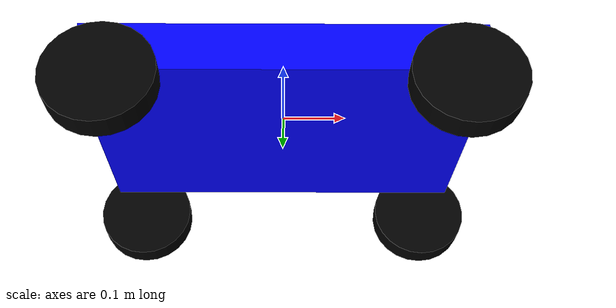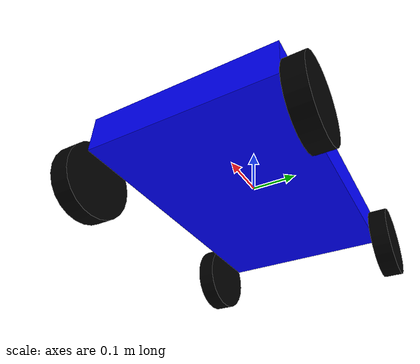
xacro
<?xml version="1.0"?>
<robot name="rover" xmlns:xacro="http://www.ros.org/wiki/xacro">

  <!-- ======================= Materials ======================= -->
  <material name="black"><color rgba="0 0 0 1"/></material>
  <material name="blue"><color rgba="0 0 1 1"/></material>
  <material name="red"><color rgba="1 0 0 1"/></material>
  <material name="yellow"><color rgba="1 1 0 1"/></material>
  <material name="green"><color rgba="0 1 0 1"/></material>

  <!-- ======================= Chassis ======================= -->
  <link name="chassis">
    <visual>
      <geometry><box size="0.6 0.4 0.08"/></geometry>
      <material name="blue"/>
    </visual>
    <collision>
      <geometry><box size="0.6 0.4 0.1"/></geometry>
    </collision>
    <inertial>
      <mass value="10"/>
      <inertia ixx="0.5" ixy="0" ixz="0" iyy="0.5" iyz="0" izz="0.5"/>
    </inertial>
  </link>
  <gazebo reference="chassis"><material>Gazebo/Blue</material></gazebo>

  <!-- ======================= Wheel Macro ======================= -->
  <xacro:macro name="wheel" params="name x y driven">
    <link name="${name}">
      <visual>
        <geometry><cylinder radius="0.08" length="0.04"/></geometry>
        <origin xyz="0 0 0" rpy="1.5708 0 0"/>
        <material name="black"/>
      </visual>
      <collision>
        <geometry><cylinder radius="0.08" length="0.04"/></geometry>
        <origin xyz="0 0 0" rpy="1.5708 0 0"/>
        <surface><friction><ode mu="0.1" mu2="0.1"/></friction></surface>
      </collision>
      <inertial>
        <mass value="1"/>
        <inertia ixx="0.001" ixy="0" ixz="0" iyy="0.001" iyz="0" izz="0.001"/>
      </inertial>
    </link>

    <joint name="${name}_joint" type="continuous">
      <parent link="chassis"/>
      <child link="${name}"/>
      <origin xyz="${x} ${y} -0.075" rpy="0 0 0"/>
      <axis xyz="0 1 0"/>
      <dynamics damping="0.1" friction="0.0"/>
    </joint>

    <gazebo reference="${name}">
      <material>Gazebo/Black</material>
      <mu1>0.4</mu1>
      <mu2>0.4</mu2>
      <kp>100000.0</kp>
      <kd>1.0</kd>
      <fdir1>1 0 0</fdir1>
      <maxVel>3</maxVel>
      <minDepth>0.001</minDepth>
    </gazebo>
  </xacro:macro>

  <!-- ======================= Wheels Placement ======================= -->
  <xacro:wheel name="front_left_wheel"  x="0.25"  y="0.23" driven="false"/>
  <xacro:wheel name="front_right_wheel" x="0.25"  y="-0.23" driven="false"/>
  <xacro:wheel name="rear_left_wheel"   x="-0.25" y="0.23" driven="true"/>
  <xacro:wheel name="rear_right_wheel"  x="-0.25" y="-0.23" driven="true"/>

  <!-- ======================= Diff Drive Plugin ======================= -->
  <gazebo>
    <plugin name="diff_drive" filename="libgazebo_ros_diff_drive.so">
      <robotNamespace>/rover</robotNamespace>
      <commandTopic>cmd_vel</commandTopic>
      <odometryTopic>odom</odometryTopic>
      <leftJoint>rear_left_wheel_joint</leftJoint>
      <rightJoint>rear_right_wheel_joint</rightJoint>
      <wheelSeparation>0.40</wheelSeparation>
      <wheelDiameter>0.16</wheelDiameter>
      <robotBaseFrame>chassis</robotBaseFrame>
      <odometryFrame>odom</odometryFrame>
      <publishWheelTF>true</publishWheelTF>
      <publishOdomTF>true</publishOdomTF>
      <publishWheelJointState>true</publishWheelJointState>
      <updateRate>50.0</updateRate>
      <torque>10.0</torque>
      <wheelAcceleration>2.0</wheelAcceleration>
      <wheelTorque>6.0</wheelTorque>
    </plugin>
  </gazebo>

</robot>
